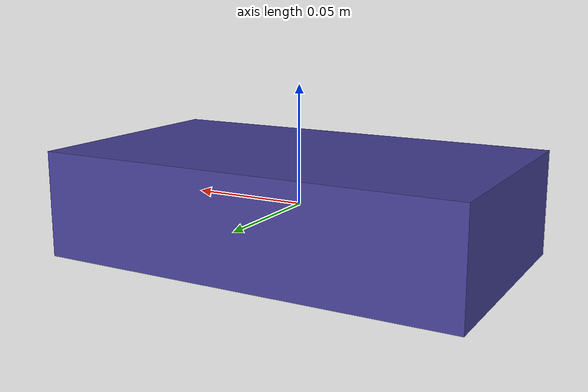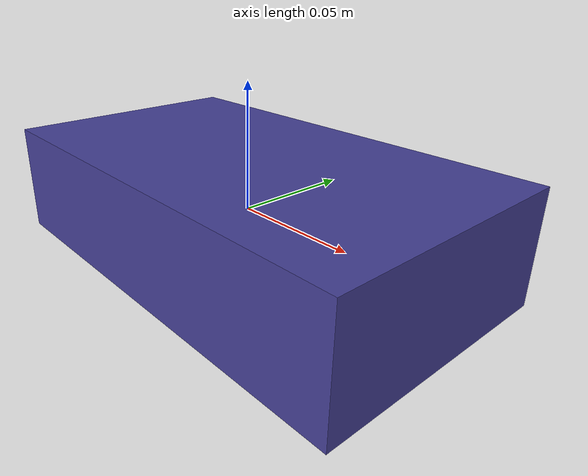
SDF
<sdf version="1.7">
  <model name="blue_berry_box_small">
    <link name="base_link">
      <inertial>
        <mass>0.05</mass>
        <inertia>
          <ixx>2.719e-04</ixx>
          <ixy>0.000e+00</ixy>
          <ixz>0.000e+00</ixz>
          <iyy>7.172e-04</iyy>
          <iyz>0.000e+00</iyz>
          <izz>9.047e-04</izz>
        </inertia>
      </inertial>
      <visual name="blue_berry_box_small_visual">
        <geometry>
          <box>
            <size>0.18 0.103 0.045</size>
          </box>
        </geometry>
        <material>
          <diffuse>0.27 0.25 0.59 1.0</diffuse>
        </material>
      </visual>
      <collision name="body">
        <geometry>
          <box>
            <size>0.178 0.103 0.043</size>
          </box>
        </geometry>
        <drake:proximity_properties>
          <drake:mu_dynamic>0.5</drake:mu_dynamic>
          <drake:mu_static>0.5</drake:mu_static>
          <drake:mesh_resolution_hint>0.02</drake:mesh_resolution_hint>
          <drake:elastic_modulus>1e5</drake:elastic_modulus>
          <drake:hunt_crossley_dissipation>5.0</drake:hunt_crossley_dissipation>
          <drake:rigid_hydroelastic/>
        </drake:proximity_properties>
      </collision>
      <collision name="corner_0">
        <pose>-0.08 -0.039 -0.0225 0 0 0</pose>
        <geometry>
          <sphere>
            <radius>0.001</radius>
          </sphere>
        </geometry>
        <drake:proximity_properties>
          <drake:mu_dynamic>0.1</drake:mu_dynamic>
          <drake:mu_static>0.1</drake:mu_static>
          <drake:mesh_resolution_hint>0.02</drake:mesh_resolution_hint>
          <drake:elastic_modulus>1e5</drake:elastic_modulus>
          <drake:hunt_crossley_dissipation>5.0</drake:hunt_crossley_dissipation>
        </drake:proximity_properties>
      </collision>
      <collision name="corner_2">
        <pose>-0.08 0.039 -0.0225 0 0 0</pose>
        <geometry>
          <sphere>
            <radius>0.001</radius>
          </sphere>
        </geometry>
        <drake:proximity_properties>
          <drake:mu_dynamic>0.1</drake:mu_dynamic>
          <drake:mu_static>0.1</drake:mu_static>
          <drake:mesh_resolution_hint>0.02</drake:mesh_resolution_hint>
          <drake:elastic_modulus>1e5</drake:elastic_modulus>
          <drake:hunt_crossley_dissipation>5.0</drake:hunt_crossley_dissipation>
        </drake:proximity_properties>
      </collision>
      <collision name="corner_4">
        <pose>0.08 -0.039 -0.0225 0 0 0</pose>
        <geometry>
          <sphere>
            <radius>0.001</radius>
          </sphere>
        </geometry>
        <drake:proximity_properties>
          <drake:mu_dynamic>0.1</drake:mu_dynamic>
          <drake:mu_static>0.1</drake:mu_static>
          <drake:mesh_resolution_hint>0.02</drake:mesh_resolution_hint>
          <drake:elastic_modulus>1e5</drake:elastic_modulus>
          <drake:hunt_crossley_dissipation>5.0</drake:hunt_crossley_dissipation>
        </drake:proximity_properties>
      </collision>
      <collision name="corner_6">
        <pose>0.08 0.039 -0.0225 0 0 0</pose>
        <geometry>
          <sphere>
            <radius>0.001</radius>
          </sphere>
        </geometry>
        <drake:proximity_properties>
          <drake:mu_dynamic>0.1</drake:mu_dynamic>
          <drake:mu_static>0.1</drake:mu_static>
          <drake:mesh_resolution_hint>0.02</drake:mesh_resolution_hint>
          <drake:elastic_modulus>1e5</drake:elastic_modulus>
          <drake:hunt_crossley_dissipation>5.0</drake:hunt_crossley_dissipation>
        </drake:proximity_properties>
      </collision>

    </link>
  </model>
</sdf>
